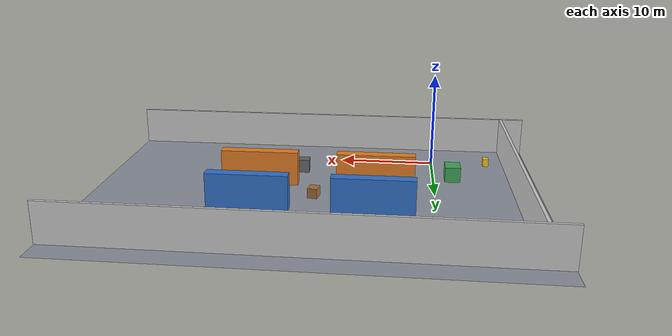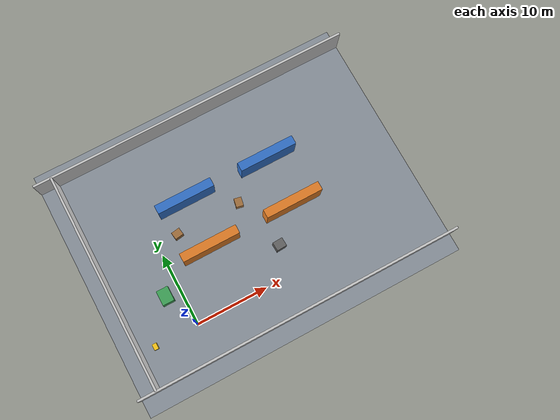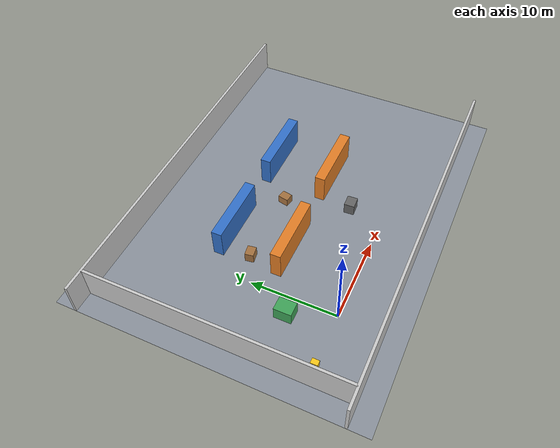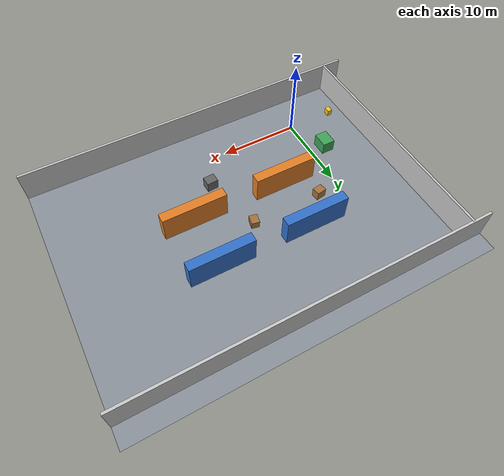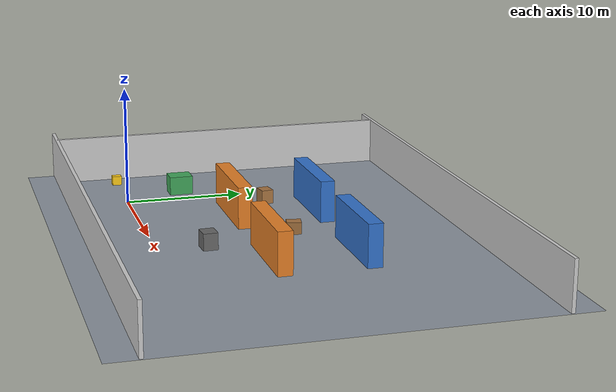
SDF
<?xml version="1.0"?>
<sdf version="1.9">
  <world name="warehouse_logistics">
    <plugin filename="gz-sim-physics-system" name="gz::sim::systems::Physics"/>
    <plugin filename="gz-sim-user-commands-system" name="gz::sim::systems::UserCommands"/>
    <plugin filename="gz-sim-scene-broadcaster-system" name="gz::sim::systems::SceneBroadcaster"/>
    <plugin filename="gz-sim-sensors-system" name="gz::sim::systems::Sensors">
      <render_engine>ogre2</render_engine>
    </plugin>
    <plugin filename="gz-sim-imu-system" name="gz::sim::systems::Imu"/>

    <gravity>0 0 -9.81</gravity>
    <physics name="warehouse_physics" type="ode">
      <max_step_size>0.002</max_step_size>
      <real_time_factor>1.0</real_time_factor>
      <real_time_update_rate>500</real_time_update_rate>
    </physics>

    <scene>
      <ambient>0.55 0.55 0.58 1.0</ambient>
      <background>0.3 0.35 0.4 1.0</background>
      <shadows>true</shadows>
      <grid>false</grid>
    </scene>

    <light name="bay_light_1" type="point">
      <pose>5 5 8 0 0 0</pose>
      <diffuse>0.9 0.9 0.85 1.0</diffuse>
      <attenuation><range>25</range><constant>0.2</constant><linear>0.05</linear><quadratic>0.01</quadratic></attenuation>
      <cast_shadows>true</cast_shadows>
    </light>
    <light name="bay_light_2" type="point">
      <pose>15 5 8 0 0 0</pose>
      <diffuse>0.9 0.9 0.85 1.0</diffuse>
      <attenuation><range>25</range><constant>0.2</constant><linear>0.05</linear><quadratic>0.01</quadratic></attenuation>
      <cast_shadows>true</cast_shadows>
    </light>

    <!-- Concrete Floor 40m x 30m -->
    <model name="warehouse_floor">
      <static>true</static>
      <pose>12 10 0 0 0 0</pose>
      <link name="floor_link">
        <collision name="collision">
          <geometry><plane><normal>0 0 1</normal><size>45 35</size></plane></geometry>
          <surface><friction><ode><mu>0.8</mu><mu2>0.8</mu2></ode></friction></surface>
        </collision>
        <visual name="floor_visual">
          <geometry><plane><normal>0 0 1</normal><size>45 35</size></plane></geometry>
          <material>
            <ambient>0.4 0.42 0.45 1</ambient>
            <diffuse>0.55 0.58 0.62 1</diffuse>
          </material>
        </visual>
      </link>
    </model>

    <!-- Outer Perimeter Safety Walls -->
    <model name="wall_north">
      <static>true</static>
      <pose>12 25 2.0 0 0 0</pose>
      <link name="l"><collision name="c"><geometry><box><size>45 0.3 4.0</size></box></geometry></collision><visual name="v"><geometry><box><size>45 0.3 4.0</size></box></geometry><material><ambient>0.7 0.7 0.7 1</ambient><diffuse>0.8 0.8 0.8 1</diffuse></material></visual></link>
    </model>
    <model name="wall_south">
      <static>true</static>
      <pose>12 -5 2.0 0 0 0</pose>
      <link name="l"><collision name="c"><geometry><box><size>45 0.3 4.0</size></box></geometry></collision><visual name="v"><geometry><box><size>45 0.3 4.0</size></box></geometry><material><ambient>0.7 0.7 0.7 1</ambient><diffuse>0.8 0.8 0.8 1</diffuse></material></visual></link>
    </model>
    <model name="wall_west">
      <static>true</static>
      <pose>-8 10 2.0 0 0 0</pose>
      <link name="l"><collision name="c"><geometry><box><size>0.3 30 4.0</size></box></geometry></collision><visual name="v"><geometry><box><size>0.3 30 4.0</size></box></geometry><material><ambient>0.7 0.7 0.7 1</ambient><diffuse>0.8 0.8 0.8 1</diffuse></material></visual></link>
    </model>

    <!-- Pallet Rack Row 1 (Aisle Left) -->
    <model name="rack_row_1a">
      <static>true</static>
      <pose>6 15 1.75 0 0 0</pose>
      <link name="link">
        <collision name="c"><geometry><box><size>8.0 1.2 3.5</size></box></geometry></collision>
        <visual name="v"><geometry><box><size>8.0 1.2 3.5</size></box></geometry><material><ambient>0.1 0.3 0.6 1</ambient><diffuse>0.2 0.45 0.8 1</diffuse></material></visual>
      </link>
    </model>
    <model name="rack_row_1b">
      <static>true</static>
      <pose>18 15 1.75 0 0 0</pose>
      <link name="link">
        <collision name="c"><geometry><box><size>8.0 1.2 3.5</size></box></geometry></collision>
        <visual name="v"><geometry><box><size>8.0 1.2 3.5</size></box></geometry><material><ambient>0.1 0.3 0.6 1</ambient><diffuse>0.2 0.45 0.8 1</diffuse></material></visual>
      </link>
    </model>

    <!-- Pallet Rack Row 2 (Aisle Center) -->
    <model name="rack_row_2a">
      <static>true</static>
      <pose>6 8 1.75 0 0 0</pose>
      <link name="link">
        <collision name="c"><geometry><box><size>8.0 1.2 3.5</size></box></geometry></collision>
        <visual name="v"><geometry><box><size>8.0 1.2 3.5</size></box></geometry><material><ambient>0.8 0.4 0.1 1</ambient><diffuse>0.9 0.5 0.15 1</diffuse></material></visual>
      </link>
    </model>
    <model name="rack_row_2b">
      <static>true</static>
      <pose>18 8 1.75 0 0 0</pose>
      <link name="link">
        <collision name="c"><geometry><box><size>8.0 1.2 3.5</size></box></geometry></collision>
        <visual name="v"><geometry><box><size>8.0 1.2 3.5</size></box></geometry><material><ambient>0.8 0.4 0.1 1</ambient><diffuse>0.9 0.5 0.15 1</diffuse></material></visual>
      </link>
    </model>

    <!-- Cargo Pallets in Aisle (Obstacles for AMR to evade) -->
    <model name="pallet_obstacle_1">
      <static>true</static>
      <pose>3 11.5 0.6 0 0 0.15</pose>
      <link name="l">
        <collision name="c"><geometry><box><size>1.2 1.0 1.2</size></box></geometry></collision>
        <visual name="v"><geometry><box><size>1.2 1.0 1.2</size></box></geometry><material><ambient>0.5 0.35 0.2 1</ambient><diffuse>0.65 0.45 0.25 1</diffuse></material></visual>
      </link>
    </model>
    <model name="pallet_obstacle_2">
      <static>true</static>
      <pose>12 11.5 0.5 0 0 -0.2</pose>
      <link name="l">
        <collision name="c"><geometry><box><size>1.0 1.2 1.0</size></box></geometry></collision>
        <visual name="v"><geometry><box><size>1.0 1.2 1.0</size></box></geometry><material><ambient>0.5 0.35 0.2 1</ambient><diffuse>0.65 0.45 0.25 1</diffuse></material></visual>
      </link>
    </model>
    <model name="pallet_obstacle_3">
      <static>true</static>
      <pose>14 4.0 0.7 0 0 0.05</pose>
      <link name="l">
        <collision name="c"><geometry><box><size>1.4 1.2 1.4</size></box></geometry></collision>
        <visual name="v"><geometry><box><size>1.4 1.2 1.4</size></box></geometry><material><ambient>0.3 0.3 0.3 1</ambient><diffuse>0.4 0.4 0.4 1</diffuse></material></visual>
      </link>
    </model>

    <!-- Staging & Storing Area Stacks -->
    <model name="crate_stack">
      <static>true</static>
      <pose>-2 5 0.8 0 0 0</pose>
      <link name="l">
        <collision name="c"><geometry><box><size>1.6 2.0 1.6</size></box></geometry></collision>
        <visual name="v"><geometry><box><size>1.6 2.0 1.6</size></box></geometry><material><ambient>0.2 0.5 0.3 1</ambient><diffuse>0.25 0.65 0.35 1</diffuse></material></visual>
      </link>
    </model>

    <!-- Charging Dock Station Marker -->
    <model name="dock_station">
      <static>true</static>
      <pose>-6 0 0.4 0 0 0</pose>
      <link name="l">
        <collision name="c"><geometry><box><size>0.6 0.8 0.8</size></box></geometry></collision>
        <visual name="v"><geometry><box><size>0.6 0.8 0.8</size></box></geometry><material><ambient>0.9 0.7 0.1 1</ambient><diffuse>1.0 0.8 0.1 1</diffuse></material></visual>
      </link>
    </model>
  </world>
</sdf>
